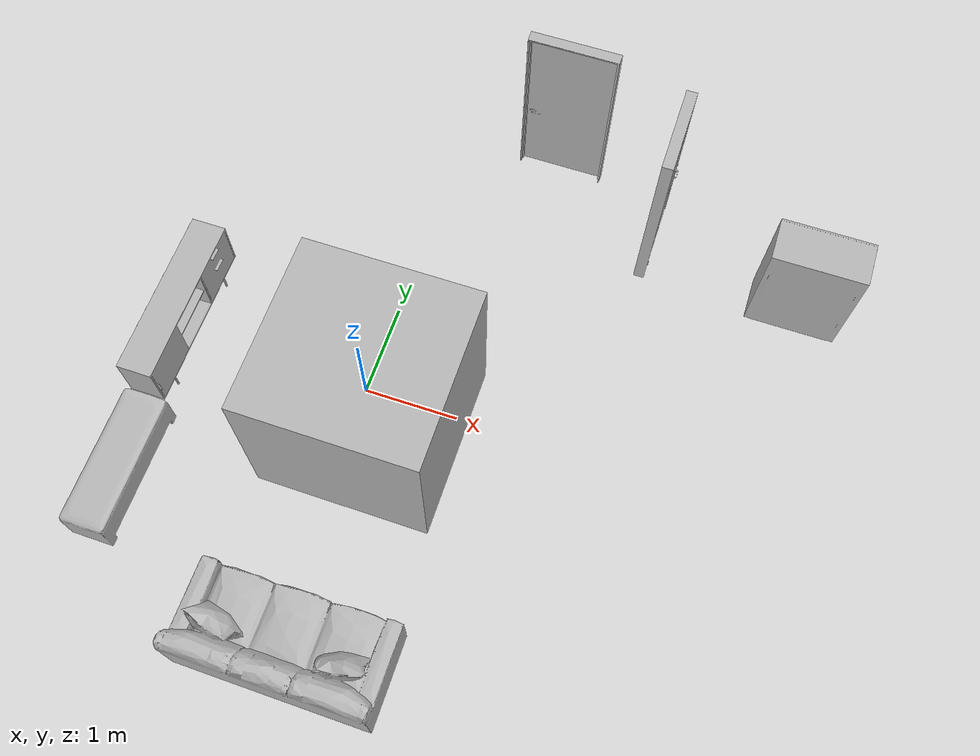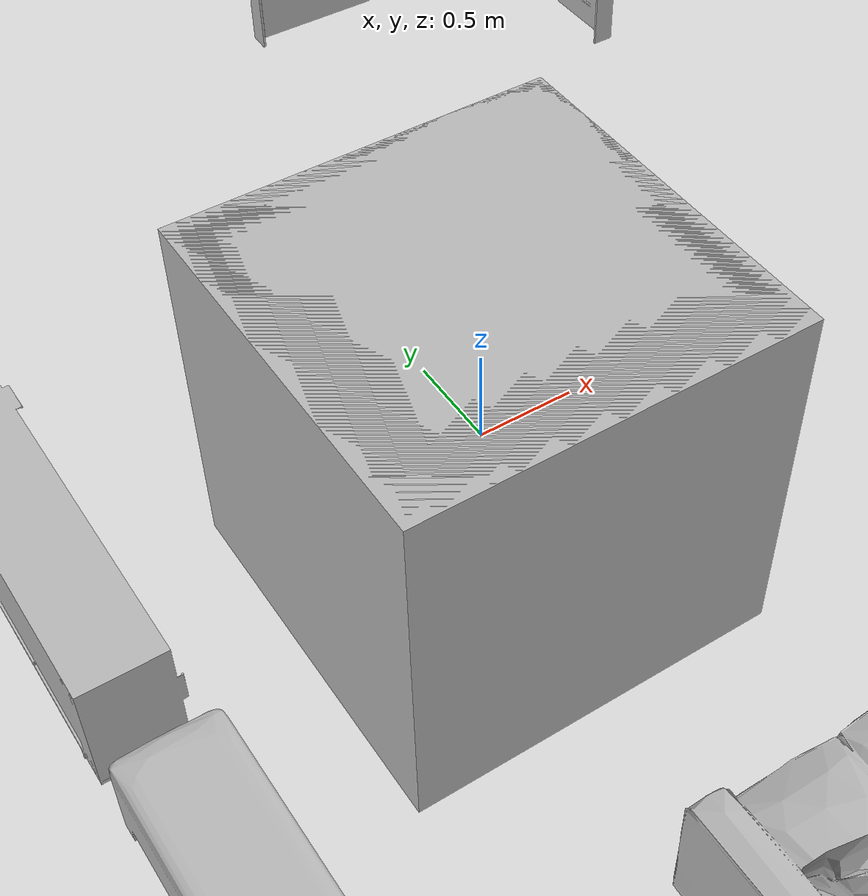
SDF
<sdf version="1.6">
 <world name="generation_wr5rh6zb9btd_world_1">
  <include><uri>model://sun</uri></include>
  <model name="Dressers_O871c82bd32ee_lod0_5">
   <include>
    <uri>model://Dressers_O871c82bd32ee_lod0</uri>
    <pose>4.050013381242752 2.349999910593033 0.0 0.0 0.0 3.14</pose>
    <static>true</static>
   </include>
  </model>
  <model name="Sofas_O6bd3c99ebbf0_lod0_10">
   <include>
    <uri>model://Sofas_O6bd3c99ebbf0_lod0</uri>
    <pose>0.3044336318969727 -2.741649642586708 0.0 0.0 0.0 3.14</pose>
    <static>true</static>
   </include>
  </model>
  <model name="StorageBenches_O467899d066b8_lod0_15">
   <include>
    <uri>model://StorageBenches_O467899d066b8_lod0</uri>
    <pose>-2.0000540167093277 -1.650010371208191 0.0 0.0 0.0 1.57</pose>
    <static>true</static>
   </include>
  </model>
  <model name="AudioVideoMediaCabinets_O2aa1b676c894_lod0_17">
   <include>
    <uri>model://AudioVideoMediaCabinets_O2aa1b676c894_lod0</uri>
    <pose>-2.066552455723286 0.0501865029335022 0.0 0.0 0.0 1.57</pose>
    <static>true</static>
   </include>
  </model>
  <model name="wall_0">
   <include><uri>model://generation_wr5rh6zb9btd_world_1/wall_0</uri><static>true</static></include>
  </model>
  <model name="wall_1">
   <include><uri>model://generation_wr5rh6zb9btd_world_1/wall_1</uri><static>true</static></include>
  </model>
  <model name="wall_10">
   <include><uri>model://generation_wr5rh6zb9btd_world_1/wall_10</uri><static>true</static></include>
  </model>
  <model name="wall_11">
   <include><uri>model://generation_wr5rh6zb9btd_world_1/wall_11</uri><static>true</static></include>
  </model>
  <model name="wall_12">
   <include><uri>model://generation_wr5rh6zb9btd_world_1/wall_12</uri><static>true</static></include>
  </model>
  <model name="wall_13">
   <include><uri>model://generation_wr5rh6zb9btd_world_1/wall_13</uri><static>true</static></include>
  </model>
  <model name="wall_14">
   <include><uri>model://generation_wr5rh6zb9btd_world_1/wall_14</uri><static>true</static></include>
  </model>
  <model name="wall_15">
   <include><uri>model://generation_wr5rh6zb9btd_world_1/wall_15</uri><static>true</static></include>
  </model>
  <model name="doorway_wall_18">
   <include><uri>model://generation_wr5rh6zb9btd_world_1/doorway_wall_18</uri><static>true</static></include>
  </model>
  <model name="doorway_wall_19">
   <include><uri>model://generation_wr5rh6zb9btd_world_1/doorway_wall_19</uri><static>true</static></include>
  </model>
  <model name="floor_Bedroom">
   <include><uri>model://generation_wr5rh6zb9btd_world_1/floor_Bedroom</uri><static>true</static></include>
  </model>
  <model name="floor_Living_room">
   <include><uri>model://generation_wr5rh6zb9btd_world_1/floor_Living room</uri><static>true</static></include>
  </model>
  <model name="floor_Bathroom">
   <include><uri>model://generation_wr5rh6zb9btd_world_1/floor_Bathroom</uri><static>true</static></include>
  </model>
  <model name="floor_Kitchen">
   <include><uri>model://generation_wr5rh6zb9btd_world_1/floor_Kitchen</uri><static>true</static></include>
  </model>
  <model name="door-Living_room-Bedroom">
   <include>
    <uri>model://DoorHingedSingleSwingRight_O8ab66c006110_lod0</uri>
    <pose>2.42 2.2675 0.0 0.0 0.0 6.281592653589794</pose>
    <static>true</static>
   </include>
  </model>
  <model name="door-Living_room-Bathroom">
   <include>
    <uri>model://DoorHingedSingleSwingRight_O6cbf8e5de37_lod0</uri>
    <pose>1.5825 3.42 0.0 0.0 0.0 1.5684073464102068</pose>
    <static>true</static>
   </include>
  </model>
 </world>
</sdf>

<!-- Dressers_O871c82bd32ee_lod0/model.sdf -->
<sdf version="1.6">
	<model name="Dressers_O871c82bd32ee_lod0">
		<link name="main_link">
			<visual name="visual_RootNode">
				<geometry>
					<mesh>
						<uri>model://Dressers_O871c82bd32ee_lod0/meshes/visual_RootNode.dae</uri>
					</mesh>
				</geometry>
			</visual>
			<collision name="collision_RootNode_lod0_0">
				<geometry>
					<mesh>
						<uri>model://Dressers_O871c82bd32ee_lod0/meshes/collision_RootNode_lod0_0.dae</uri>
					</mesh>
				</geometry>
			</collision>
		</link>
	</model>
</sdf>

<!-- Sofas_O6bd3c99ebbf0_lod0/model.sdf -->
<sdf version="1.6">
	<model name="Sofas_O6bd3c99ebbf0_lod0">
		<link name="main_link">
			<visual name="visual_RootNode">
				<geometry>
					<mesh>
						<uri>model://Sofas_O6bd3c99ebbf0_lod0/meshes/visual_RootNode.dae</uri>
					</mesh>
				</geometry>
			</visual>
			<collision name="collision_RootNode_lod0_0">
				<geometry>
					<mesh>
						<uri>model://Sofas_O6bd3c99ebbf0_lod0/meshes/collision_RootNode_lod0_0.dae</uri>
					</mesh>
				</geometry>
			</collision>
		</link>
	</model>
</sdf>

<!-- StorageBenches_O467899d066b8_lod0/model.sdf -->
<sdf version="1.6">
	<model name="StorageBenches_O467899d066b8_lod0">
		<link name="main_link">
			<visual name="visual_RootNode">
				<geometry>
					<mesh>
						<uri>model://StorageBenches_O467899d066b8_lod0/meshes/visual_RootNode.dae</uri>
					</mesh>
				</geometry>
			</visual>
			<collision name="collision_RootNode_lod0_0">
				<geometry>
					<mesh>
						<uri>model://StorageBenches_O467899d066b8_lod0/meshes/collision_RootNode_lod0_0.dae</uri>
					</mesh>
				</geometry>
			</collision>
		</link>
	</model>
</sdf>

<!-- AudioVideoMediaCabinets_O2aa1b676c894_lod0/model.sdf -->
<sdf version="1.6">
	<model name="AudioVideoMediaCabinets_O2aa1b676c894_lod0">
		<link name="main_link">
			<visual name="visual_RootNode">
				<geometry>
					<mesh>
						<uri>model://AudioVideoMediaCabinets_O2aa1b676c894_lod0/meshes/visual_RootNode.dae</uri>
					</mesh>
				</geometry>
			</visual>
			<collision name="collision_RootNode_lod0_0">
				<geometry>
					<mesh>
						<uri>model://AudioVideoMediaCabinets_O2aa1b676c894_lod0/meshes/collision_RootNode_lod0_0.dae</uri>
					</mesh>
				</geometry>
			</collision>
		</link>
	</model>
</sdf>

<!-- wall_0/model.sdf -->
<sdf version="1.6">
  <model name="wall_0">
    <static>true</static>
    <link name="link">
      <collision name="collision">
        <pose>0 0 0 0 0 0</pose>
        <geometry>
          <mesh>
            <uri>model://generation_wr5rh6zb9btd_world_1/wall_0/meshes/wall_0.dae</uri>
            <scale>1 1 1</scale>
          </mesh>
        </geometry>
        <surface>
          <contact>
            <collide_bitmask>2</collide_bitmask>
          </contact>
        </surface>
      </collision>
      <visual name="visual">
        <meta>
          <layer>0</layer>
        </meta>
        <pose>0 0 0 0 0 0</pose>
        <geometry>
          <mesh>
            <uri>model://generation_wr5rh6zb9btd_world_1/wall_0/meshes/wall_0.dae</uri>
            <scale>1 1 1</scale>
          </mesh>
        </geometry>
      </visual>
    </link>
  </model>
</sdf>

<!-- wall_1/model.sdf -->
<sdf version="1.6">
  <model name="wall_1">
    <static>true</static>
    <link name="link">
      <collision name="collision">
        <pose>0 0 0 0 0 0</pose>
        <geometry>
          <mesh>
            <uri>model://generation_wr5rh6zb9btd_world_1/wall_1/meshes/wall_1.dae</uri>
            <scale>1 1 1</scale>
          </mesh>
        </geometry>
        <surface>
          <contact>
            <collide_bitmask>2</collide_bitmask>
          </contact>
        </surface>
      </collision>
      <visual name="visual">
        <meta>
          <layer>0</layer>
        </meta>
        <pose>0 0 0 0 0 0</pose>
        <geometry>
          <mesh>
            <uri>model://generation_wr5rh6zb9btd_world_1/wall_1/meshes/wall_1.dae</uri>
            <scale>1 1 1</scale>
          </mesh>
        </geometry>
      </visual>
    </link>
  </model>
</sdf>

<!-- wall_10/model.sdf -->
<sdf version="1.6">
  <model name="wall_10">
    <static>true</static>
    <link name="link">
      <collision name="collision">
        <pose>0 0 0 0 0 0</pose>
        <geometry>
          <mesh>
            <uri>model://generation_wr5rh6zb9btd_world_1/wall_10/meshes/wall_10.dae</uri>
            <scale>1 1 1</scale>
          </mesh>
        </geometry>
        <surface>
          <contact>
            <collide_bitmask>2</collide_bitmask>
          </contact>
        </surface>
      </collision>
      <visual name="visual">
        <meta>
          <layer>0</layer>
        </meta>
        <pose>0 0 0 0 0 0</pose>
        <geometry>
          <mesh>
            <uri>model://generation_wr5rh6zb9btd_world_1/wall_10/meshes/wall_10.dae</uri>
            <scale>1 1 1</scale>
          </mesh>
        </geometry>
      </visual>
    </link>
  </model>
</sdf>

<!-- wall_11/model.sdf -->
<sdf version="1.6">
  <model name="wall_11">
    <static>true</static>
    <link name="link">
      <collision name="collision">
        <pose>0 0 0 0 0 0</pose>
        <geometry>
          <mesh>
            <uri>model://generation_wr5rh6zb9btd_world_1/wall_11/meshes/wall_11.dae</uri>
            <scale>1 1 1</scale>
          </mesh>
        </geometry>
        <surface>
          <contact>
            <collide_bitmask>2</collide_bitmask>
          </contact>
        </surface>
      </collision>
      <visual name="visual">
        <meta>
          <layer>0</layer>
        </meta>
        <pose>0 0 0 0 0 0</pose>
        <geometry>
          <mesh>
            <uri>model://generation_wr5rh6zb9btd_world_1/wall_11/meshes/wall_11.dae</uri>
            <scale>1 1 1</scale>
          </mesh>
        </geometry>
      </visual>
    </link>
  </model>
</sdf>

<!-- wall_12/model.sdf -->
<sdf version="1.6">
  <model name="wall_12">
    <static>true</static>
    <link name="link">
      <collision name="collision">
        <pose>0 0 0 0 0 0</pose>
        <geometry>
          <mesh>
            <uri>model://generation_wr5rh6zb9btd_world_1/wall_12/meshes/wall_12.dae</uri>
            <scale>1 1 1</scale>
          </mesh>
        </geometry>
        <surface>
          <contact>
            <collide_bitmask>2</collide_bitmask>
          </contact>
        </surface>
      </collision>
      <visual name="visual">
        <meta>
          <layer>0</layer>
        </meta>
        <pose>0 0 0 0 0 0</pose>
        <geometry>
          <mesh>
            <uri>model://generation_wr5rh6zb9btd_world_1/wall_12/meshes/wall_12.dae</uri>
            <scale>1 1 1</scale>
          </mesh>
        </geometry>
      </visual>
    </link>
  </model>
</sdf>

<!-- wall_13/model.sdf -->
<sdf version="1.6">
  <model name="wall_13">
    <static>true</static>
    <link name="link">
      <collision name="collision">
        <pose>0 0 0 0 0 0</pose>
        <geometry>
          <mesh>
            <uri>model://generation_wr5rh6zb9btd_world_1/wall_13/meshes/wall_13.dae</uri>
            <scale>1 1 1</scale>
          </mesh>
        </geometry>
        <surface>
          <contact>
            <collide_bitmask>2</collide_bitmask>
          </contact>
        </surface>
      </collision>
      <visual name="visual">
        <meta>
          <layer>0</layer>
        </meta>
        <pose>0 0 0 0 0 0</pose>
        <geometry>
          <mesh>
            <uri>model://generation_wr5rh6zb9btd_world_1/wall_13/meshes/wall_13.dae</uri>
            <scale>1 1 1</scale>
          </mesh>
        </geometry>
      </visual>
    </link>
  </model>
</sdf>

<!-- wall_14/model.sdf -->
<sdf version="1.6">
  <model name="wall_14">
    <static>true</static>
    <link name="link">
      <collision name="collision">
        <pose>0 0 0 0 0 0</pose>
        <geometry>
          <mesh>
            <uri>model://generation_wr5rh6zb9btd_world_1/wall_14/meshes/wall_14.dae</uri>
            <scale>1 1 1</scale>
          </mesh>
        </geometry>
        <surface>
          <contact>
            <collide_bitmask>2</collide_bitmask>
          </contact>
        </surface>
      </collision>
      <visual name="visual">
        <meta>
          <layer>0</layer>
        </meta>
        <pose>0 0 0 0 0 0</pose>
        <geometry>
          <mesh>
            <uri>model://generation_wr5rh6zb9btd_world_1/wall_14/meshes/wall_14.dae</uri>
            <scale>1 1 1</scale>
          </mesh>
        </geometry>
      </visual>
    </link>
  </model>
</sdf>

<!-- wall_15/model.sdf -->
<sdf version="1.6">
  <model name="wall_15">
    <static>true</static>
    <link name="link">
      <collision name="collision">
        <pose>0 0 0 0 0 0</pose>
        <geometry>
          <mesh>
            <uri>model://generation_wr5rh6zb9btd_world_1/wall_15/meshes/wall_15.dae</uri>
            <scale>1 1 1</scale>
          </mesh>
        </geometry>
        <surface>
          <contact>
            <collide_bitmask>2</collide_bitmask>
          </contact>
        </surface>
      </collision>
      <visual name="visual">
        <meta>
          <layer>0</layer>
        </meta>
        <pose>0 0 0 0 0 0</pose>
        <geometry>
          <mesh>
            <uri>model://generation_wr5rh6zb9btd_world_1/wall_15/meshes/wall_15.dae</uri>
            <scale>1 1 1</scale>
          </mesh>
        </geometry>
      </visual>
    </link>
  </model>
</sdf>

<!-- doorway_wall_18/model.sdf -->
<sdf version="1.6">
  <model name="doorway_wall_18">
    <static>true</static>
    <link name="link">
      <collision name="collision">
        <pose>0 0 0 0 0 0</pose>
        <geometry>
          <mesh>
            <uri>model://generation_wr5rh6zb9btd_world_1/doorway_wall_18/meshes/doorway_wall_18.dae</uri>
            <scale>1 1 1</scale>
          </mesh>
        </geometry>
        <surface>
          <contact>
            <collide_bitmask>2</collide_bitmask>
          </contact>
        </surface>
      </collision>
      <visual name="visual">
        <meta>
          <layer>0</layer>
        </meta>
        <pose>0 0 0 0 0 0</pose>
        <geometry>
          <mesh>
            <uri>model://generation_wr5rh6zb9btd_world_1/doorway_wall_18/meshes/doorway_wall_18.dae</uri>
            <scale>1 1 1</scale>
          </mesh>
        </geometry>
      </visual>
    </link>
  </model>
</sdf>

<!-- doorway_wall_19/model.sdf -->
<sdf version="1.6">
  <model name="doorway_wall_19">
    <static>true</static>
    <link name="link">
      <collision name="collision">
        <pose>0 0 0 0 0 0</pose>
        <geometry>
          <mesh>
            <uri>model://generation_wr5rh6zb9btd_world_1/doorway_wall_19/meshes/doorway_wall_19.dae</uri>
            <scale>1 1 1</scale>
          </mesh>
        </geometry>
        <surface>
          <contact>
            <collide_bitmask>2</collide_bitmask>
          </contact>
        </surface>
      </collision>
      <visual name="visual">
        <meta>
          <layer>0</layer>
        </meta>
        <pose>0 0 0 0 0 0</pose>
        <geometry>
          <mesh>
            <uri>model://generation_wr5rh6zb9btd_world_1/doorway_wall_19/meshes/doorway_wall_19.dae</uri>
            <scale>1 1 1</scale>
          </mesh>
        </geometry>
      </visual>
    </link>
  </model>
</sdf>

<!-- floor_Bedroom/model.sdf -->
<sdf version="1.6">
  <model name="floor_Bedroom">
    <static>true</static>
    <link name="link">
      <collision name="collision">
        <pose>0 0 0 0 0 0</pose>
        <geometry>
          <mesh>
            <uri>model://generation_wr5rh6zb9btd_world_1/floor_Bedroom/meshes/floor_Bedroom.dae</uri>
            <scale>1 1 1</scale>
          </mesh>
        </geometry>
        <surface>
          <contact>
            <collide_bitmask>2</collide_bitmask>
          </contact>
          <friction>
            <ode>
              <mu>100</mu>
              <mu2>50</mu2>
            </ode>
          </friction>
        </surface>
      </collision>
      <visual name="visual">
        <meta>
          <layer>0</layer>
        </meta>
        <pose>0 0 0 0 0 0</pose>
        <geometry>
          <mesh>
            <uri>model://generation_wr5rh6zb9btd_world_1/floor_Bedroom/meshes/floor_Bedroom.dae</uri>
            <scale>1 1 1</scale>
          </mesh>
        </geometry>
      </visual>
    </link>
  </model>
</sdf>

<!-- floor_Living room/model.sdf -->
<sdf version="1.6">
  <model name="floor_Living room">
    <static>true</static>
    <link name="link">
      <collision name="collision">
        <pose>0 0 0 0 0 0</pose>
        <geometry>
          <mesh>
            <uri>model://generation_wr5rh6zb9btd_world_1/floor_Living room/meshes/floor_Living room.dae</uri>
            <scale>1 1 1</scale>
          </mesh>
        </geometry>
        <surface>
          <contact>
            <collide_bitmask>2</collide_bitmask>
          </contact>
          <friction>
            <ode>
              <mu>100</mu>
              <mu2>50</mu2>
            </ode>
          </friction>
        </surface>
      </collision>
      <visual name="visual">
        <meta>
          <layer>0</layer>
        </meta>
        <pose>0 0 0 0 0 0</pose>
        <geometry>
          <mesh>
            <uri>model://generation_wr5rh6zb9btd_world_1/floor_Living room/meshes/floor_Living room.dae</uri>
            <scale>1 1 1</scale>
          </mesh>
        </geometry>
      </visual>
    </link>
  </model>
</sdf>

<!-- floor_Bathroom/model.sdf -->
<sdf version="1.6">
  <model name="floor_Bathroom">
    <static>true</static>
    <link name="link">
      <collision name="collision">
        <pose>0 0 0 0 0 0</pose>
        <geometry>
          <mesh>
            <uri>model://generation_wr5rh6zb9btd_world_1/floor_Bathroom/meshes/floor_Bathroom.dae</uri>
            <scale>1 1 1</scale>
          </mesh>
        </geometry>
        <surface>
          <contact>
            <collide_bitmask>2</collide_bitmask>
          </contact>
          <friction>
            <ode>
              <mu>100</mu>
              <mu2>50</mu2>
            </ode>
          </friction>
        </surface>
      </collision>
      <visual name="visual">
        <meta>
          <layer>0</layer>
        </meta>
        <pose>0 0 0 0 0 0</pose>
        <geometry>
          <mesh>
            <uri>model://generation_wr5rh6zb9btd_world_1/floor_Bathroom/meshes/floor_Bathroom.dae</uri>
            <scale>1 1 1</scale>
          </mesh>
        </geometry>
      </visual>
    </link>
  </model>
</sdf>

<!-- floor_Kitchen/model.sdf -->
<sdf version="1.6">
  <model name="floor_Kitchen">
    <static>true</static>
    <link name="link">
      <collision name="collision">
        <pose>0 0 0 0 0 0</pose>
        <geometry>
          <mesh>
            <uri>model://generation_wr5rh6zb9btd_world_1/floor_Kitchen/meshes/floor_Kitchen.dae</uri>
            <scale>1 1 1</scale>
          </mesh>
        </geometry>
        <surface>
          <contact>
            <collide_bitmask>2</collide_bitmask>
          </contact>
          <friction>
            <ode>
              <mu>100</mu>
              <mu2>50</mu2>
            </ode>
          </friction>
        </surface>
      </collision>
      <visual name="visual">
        <meta>
          <layer>0</layer>
        </meta>
        <pose>0 0 0 0 0 0</pose>
        <geometry>
          <mesh>
            <uri>model://generation_wr5rh6zb9btd_world_1/floor_Kitchen/meshes/floor_Kitchen.dae</uri>
            <scale>1 1 1</scale>
          </mesh>
        </geometry>
      </visual>
    </link>
  </model>
</sdf>

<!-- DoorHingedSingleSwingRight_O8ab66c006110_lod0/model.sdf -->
<sdf version="1.6">
	<model name="DoorHingedSingleSwingRight_O8ab66c006110_lod0">
		<link name="frame_link">
			<pose>-0.05773423984646797 0.45874273777008057 -0.0 0 0 0</pose>
			<visual name="visual_Door_right_frame_one_panel_wood_dark">
				<geometry>
					<mesh>
						<uri>model://DoorHingedSingleSwingRight_O8ab66c006110_lod0/meshes/visual_Door_right_frame_one_panel_wood_dark.dae</uri>
					</mesh>
				</geometry>
				<pose>0 0 0 0 0 0</pose>
			</visual>
			<collision name="collision_Door_right_frame_one_panel_wood_dark_lod0_0">
				<geometry>
					<mesh>
						<uri>model://DoorHingedSingleSwingRight_O8ab66c006110_lod0/meshes/collision_Door_right_frame_one_panel_wood_dark_lod0_0.dae</uri>
					</mesh>
				</geometry>
				<pose>0 0 0 0 0 0</pose>
				<surface>
					<contact>
						<collide_bitmask>1</collide_bitmask>
					</contact>
				</surface>
			</collision>
		</link>
		<link name="door_link">
			<pose>0 0 0 0 0 0</pose>
			<inertial>
				<mass>1.0</mass>
				<inertia>
					<ixx>0.41441923703</ixx>
					<ixy>0.0</ixy>
					<ixz>0.0</ixz>
					<iyy>0.073070729875</iyy>
					<iyz>0.0</iyz>
					<izz>0.34294104678</izz>
				</inertia>
			</inertial>
			<visual name="visual_Door_right_door_one_panel_wood_dark">
				<geometry>
					<mesh>
						<uri>model://DoorHingedSingleSwingRight_O8ab66c006110_lod0/meshes/visual_Door_right_door_one_panel_wood_dark.dae</uri>
					</mesh>
				</geometry>
				<pose>-0.05773423984646797 0.45874273777008057 -0.0 0 0 0</pose>
			</visual>
			<collision name="collision_Door_right_door_one_panel_wood_dark_lod0_0">
				<geometry>
					<mesh>
						<uri>model://DoorHingedSingleSwingRight_O8ab66c006110_lod0/meshes/collision_Door_right_door_one_panel_wood_dark_lod0_0.dae</uri>
					</mesh>
				</geometry>
				<pose>-0.05773423984646797 0.45874273777008057 -0.0 0 0 0</pose>
				<surface>
					<contact>
						<collide_bitmask>1</collide_bitmask>
					</contact>
				</surface>
			</collision>
		</link>
		<joint name="world_joint" type="fixed">
			<child>frame_link</child>
			<parent>world</parent>
			<axis>
				<limit>
					<lower>0</lower>
					<upper>0</upper>
				</limit>
				<xyz>0 1 0</xyz>
				<dynamics>
					<damping>1</damping>
					<spring_reference>0</spring_reference>
					<spring_stiffness>0</spring_stiffness>
				</dynamics>
			</axis>
			<physics>
				<ode>
					<cfm_damping>1</cfm_damping>
					<limit/>
					<cfm>0</cfm>
					<erp>0.2</erp>
				</ode>
			</physics>
		</joint>
		<joint name="hinge_joint" type="revolute">
			<parent>frame_link</parent>
			<child>door_link</child>
			<pose>0 0 0 0 0 0</pose>
			<axis>
				<xyz>0 0 -1</xyz>
				<limit>
					<lower>0</lower>
					<upper>1.5707963267948966</upper>
				</limit>
				<dynamics>
					<damping>1</damping>
					<friction>1</friction>
					<spring_reference>0</spring_reference>
					<spring_stiffness>0</spring_stiffness>
				</dynamics>
				<use_parent_model_frame>0</use_parent_model_frame>
			</axis>
			<physics>
				<ode>
					<cfm_damping>1</cfm_damping>
					<limit>
						<cfm>0</cfm>
						<erp>0.2</erp>
					</limit>
				</ode>
			</physics>
		</joint>
	</model>
</sdf>

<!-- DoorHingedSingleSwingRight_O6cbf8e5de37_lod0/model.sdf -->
<sdf version="1.6">
	<model name="DoorHingedSingleSwingRight_O6cbf8e5de37_lod0">
		<link name="frame_link">
			<pose>-0.05773276090621948 0.45874738693237305 -0.0 0 0 0</pose>
			<visual name="visual_Door_right_frame_zero_panel_wood_dark">
				<geometry>
					<mesh>
						<uri>model://DoorHingedSingleSwingRight_O6cbf8e5de37_lod0/meshes/visual_Door_right_frame_zero_panel_wood_dark.dae</uri>
					</mesh>
				</geometry>
				<pose>0 0 0 0 0 0</pose>
			</visual>
			<collision name="collision_Door_right_frame_zero_panel_wood_dark_lod0_0">
				<geometry>
					<mesh>
						<uri>model://DoorHingedSingleSwingRight_O6cbf8e5de37_lod0/meshes/collision_Door_right_frame_zero_panel_wood_dark_lod0_0.dae</uri>
					</mesh>
				</geometry>
				<pose>0 0 0 0 0 0</pose>
				<surface>
					<contact>
						<collide_bitmask>1</collide_bitmask>
					</contact>
				</surface>
			</collision>
		</link>
		<link name="door_link">
			<pose>0 0 0 0 0 0</pose>
			<inertial>
				<mass>1.0</mass>
				<inertia>
					<ixx>0.41441923703</ixx>
					<ixy>0.0</ixy>
					<ixz>0.0</ixz>
					<iyy>0.073070729875</iyy>
					<iyz>0.0</iyz>
					<izz>0.34294104678</izz>
				</inertia>
			</inertial>
			<visual name="visual_Door_right_door_zero_panel_wood_dark">
				<geometry>
					<mesh>
						<uri>model://DoorHingedSingleSwingRight_O6cbf8e5de37_lod0/meshes/visual_Door_right_door_zero_panel_wood_dark.dae</uri>
					</mesh>
				</geometry>
				<pose>-0.05773276090621948 0.45874738693237305 -0.0 0 0 0</pose>
			</visual>
			<collision name="collision_Door_right_door_zero_panel_wood_dark_lod0_0">
				<geometry>
					<mesh>
						<uri>model://DoorHingedSingleSwingRight_O6cbf8e5de37_lod0/meshes/collision_Door_right_door_zero_panel_wood_dark_lod0_0.dae</uri>
					</mesh>
				</geometry>
				<pose>-0.05773276090621948 0.45874738693237305 -0.0 0 0 0</pose>
				<surface>
					<contact>
						<collide_bitmask>1</collide_bitmask>
					</contact>
				</surface>
			</collision>
		</link>
		<joint name="world_joint" type="fixed">
			<child>frame_link</child>
			<parent>world</parent>
			<axis>
				<limit>
					<lower>0</lower>
					<upper>0</upper>
				</limit>
				<xyz>0 1 0</xyz>
				<dynamics>
					<damping>1</damping>
					<spring_reference>0</spring_reference>
					<spring_stiffness>0</spring_stiffness>
				</dynamics>
			</axis>
			<physics>
				<ode>
					<cfm_damping>1</cfm_damping>
					<limit/>
					<cfm>0</cfm>
					<erp>0.2</erp>
				</ode>
			</physics>
		</joint>
		<joint name="hinge_joint" type="revolute">
			<parent>frame_link</parent>
			<child>door_link</child>
			<pose>0 0 0 0 0 0</pose>
			<axis>
				<xyz>0 0 -1</xyz>
				<limit>
					<lower>0</lower>
					<upper>1.5707963267948966</upper>
				</limit>
				<dynamics>
					<damping>1</damping>
					<friction>1</friction>
					<spring_reference>0</spring_reference>
					<spring_stiffness>0</spring_stiffness>
				</dynamics>
				<use_parent_model_frame>0</use_parent_model_frame>
			</axis>
			<physics>
				<ode>
					<cfm_damping>1</cfm_damping>
					<limit>
						<cfm>0</cfm>
						<erp>0.2</erp>
					</limit>
				</ode>
			</physics>
		</joint>
	</model>
</sdf>
